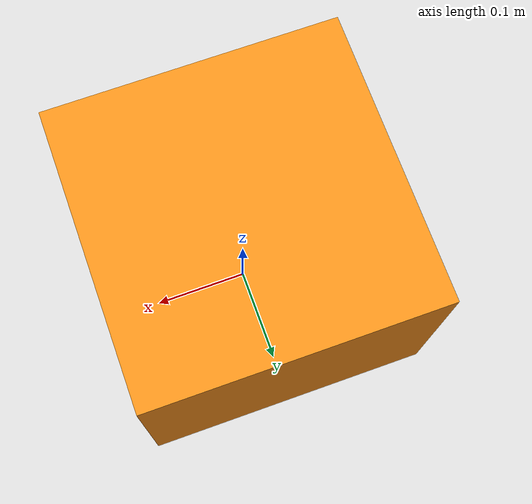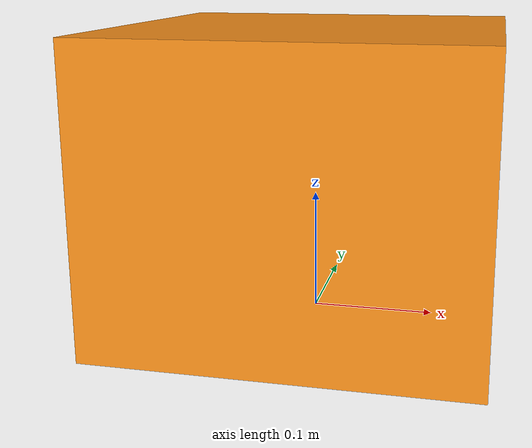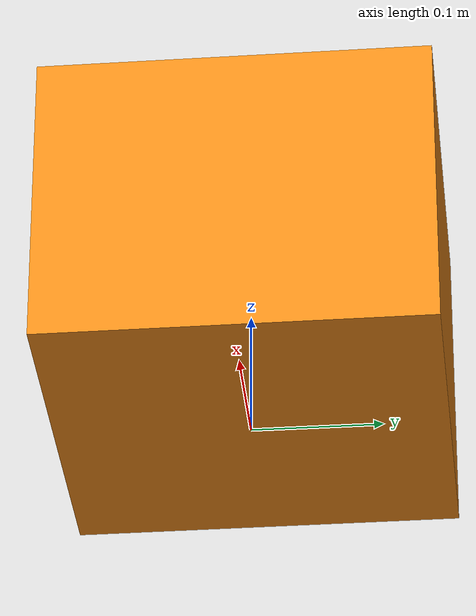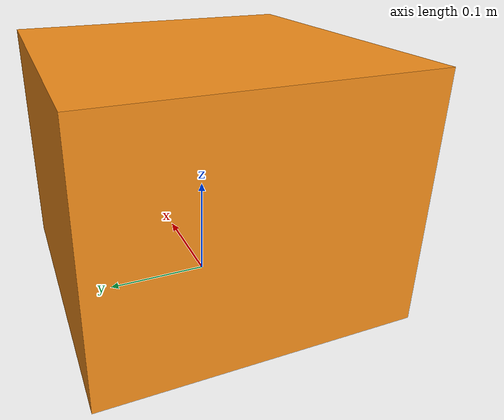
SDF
<?xml version='1.0'?>
<sdf version='1.6'>
  <model name='obstacle_box'>
    <pose frame=''>0 0 0 0 -0 -1.5708</pose>
    <link name='obstacle_box'>
      <visual name='obstacle_box'>
        <pose frame=''>0 0 0.120 0 -0 0</pose>
        <geometry>
          <box>
            <size>0.3 0.3 0.240</size>
          </box>
        </geometry>
        <material>
          <script>
            <uri>file://media/materials/scripts/gazebo.material</uri>
            <name>Gazebo/Orange</name>
          </script>
          <ambient>1 0 1 1</ambient>
        </material>
      </visual>
      <collision name='obstacle_box'>
        <pose frame=''>0 0 0.120 0 -0 0</pose>
        <geometry>
          <box>
            <size>0.3 0.3 0.240</size>
          </box>
        </geometry>
      </collision>
      <pose frame=''>0 0 0 0 -0 0</pose>
    </link>
    <static>1</static>
  </model>
</sdf>
